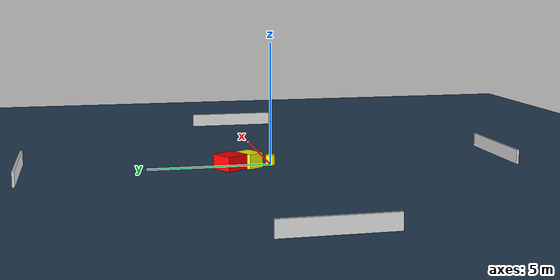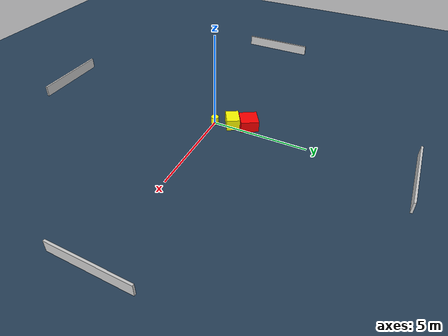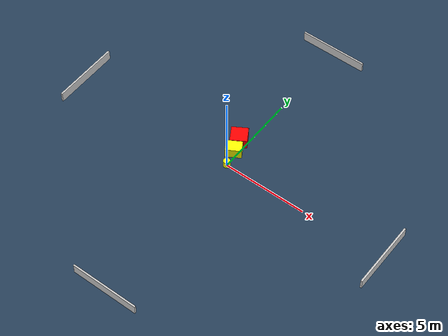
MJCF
<?xml version="1.0" ?>
<mujoco model="generated_environment">
  <option timestep="0.01" integrator="RK4" cone="elliptic"/>
  <default>
    <geom density="1"/>
  </default>
  <asset>
    <texture builtin="gradient" height="3072" name="skybox" rgb1="0.3 0.5 0.7" rgb2="0 0 0" type="skybox" width="512"/>
    <texture builtin="checker" height="300" name="groundplane" rgb1="0.2 0.3 0.4" rgb2="0.1 0.2 0.3" type="2d" width="300"/>
    <material name="groundplane" reflectance="0.2" texrepeat="5 5" texture="groundplane"/>
  </asset>
  <worldbody>
    <light dir="0 0 -1" directional="true" pos="0 0 1.5"/>
    <geom condim="3" friction="0.5 0.005 0.001" material="groundplane" name="floor" pos="0 0 0" size="0 0 0.05" type="plane"/>
    <body name="walls">
      <geom name="wall_1" condim="4" pos="-10.0 0.0 0.3" rgba="0.800000011920929 0.800000011920929 0.800000011920929 1.0" size="0.05 2.0 0.3" type="box"/>
      <geom name="wall_2" condim="4" pos="10.0 0.0 0.3" rgba="0.800000011920929 0.800000011920929 0.800000011920929 1.0" size="0.05 2.0 0.3" type="box"/>
      <geom name="wall_3" condim="4" pos="0.0 -10.0 0.3" rgba="0.800000011920929 0.800000011920929 0.800000011920929 1.0" size="2.0 0.05 0.3" type="box"/>
      <geom name="wall_4" condim="4" pos="0.0 10.0 0.3" rgba="0.800000011920929 0.800000011920929 0.800000011920929 1.0" size="2.0 0.05 0.3" type="box"/>
    </body>
    <body name="robot">
      <joint name="joint_x" type="slide" pos="0 0 0" axis="1 0 0"/>
      <joint name="joint_y" type="slide" pos="0 0 0" axis="0 1 0"/>
      <geom name="robot" type="cylinder" pos="0.0 0.0 0.2" size="0.2 0.2 0.0" mass="5.0" friction="1.0 0.005 0.0001" condim="4" rgba="1.0 1.0 0.0 1.0"/>
    </body>
    <body name="obstacle_1_movable">
      <geom name="obstacle_1_movable" condim="4" pos="-0.2211060961648236 0.9243136760416124 0.3" euler="0 0 210.36502630122524" friction="0.0 0.005 0.001" rgba="1.0 1.0 0.0 1.0" size="0.45249023360168605 0.3417237033293504 0.3" type="box" mass="0.1"/>
      <joint type="free"/>
    </body>
    <body name="obstacle_2_static">
      <geom name="obstacle_2_static" condim="4" pos="-0.48063183192439524 1.7354883966558317 0.3" euler="0 0 121.07221841378842" friction="0.0 0.005 0.001" rgba="1.0 0.0 0.0 1.0" size="0.46951999928376054 0.47905450141188494 0.3" type="box"/>
    </body>
  </worldbody>
  <actuator>
    <motor name="actuator_x" joint="joint_x" gear="1" ctrlrange="-1 1"/>
    <motor name="actuator_y" joint="joint_y" gear="1" ctrlrange="-1 1"/>
  </actuator>
</mujoco>
